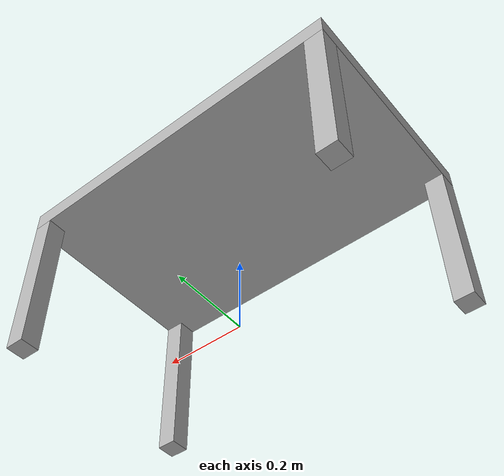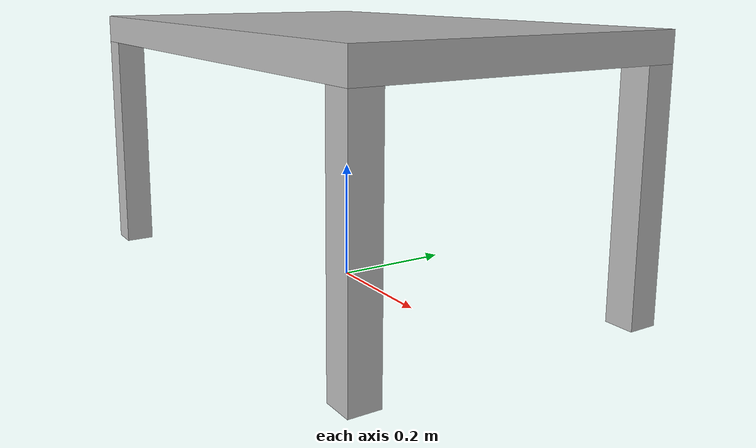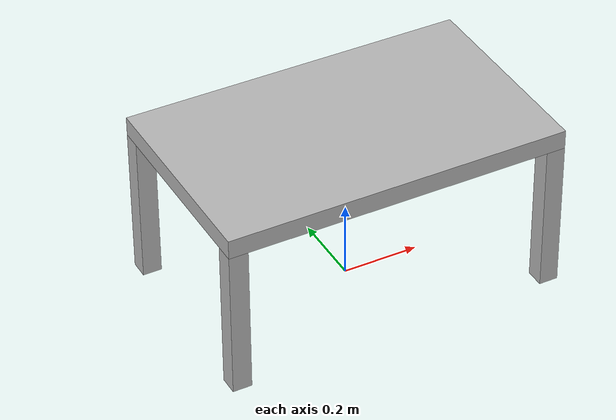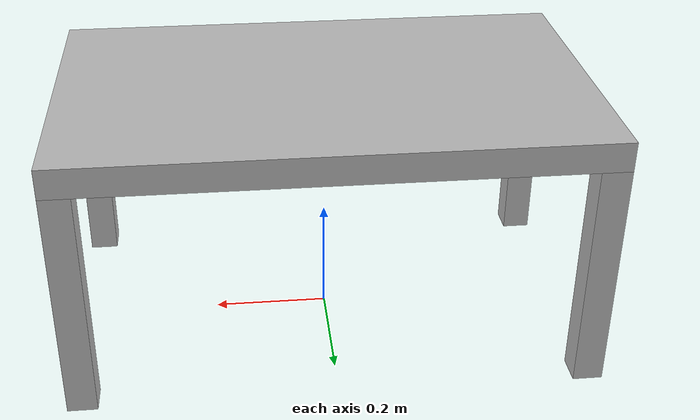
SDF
<?xml version="1.0" ?>
<sdf version="1.6">
  <model name="rpo2023/tv_table">
    <static>true</static>
    <link name="1_link">
      <collision name="1_col">
        <geometry>
          <box>
            <size>0.9 0.55 0.05</size>
          </box>
        </geometry>
      </collision>
      <visual name="1_vis">
        <geometry>
          <box>
            <size>0.9 0.55 0.05</size>
          </box>
        </geometry>
      </visual>
      <pose>0.0 0.0 0.425 0 0 0</pose>
    </link>
    <link name="2_link">
      <collision name="2_col">
        <geometry>
          <box>
            <size>0.05 0.05 0.4</size>
          </box>
        </geometry>
      </collision>
      <visual name="2_vis">
        <geometry>
          <box>
            <size>0.05 0.05 0.4</size>
          </box>
        </geometry>
      </visual>
      <pose>-0.425 -0.25 0.2 0 0 0</pose>
    </link>
    <link name="3_link">
      <collision name="3_col">
        <geometry>
          <box>
            <size>0.05 0.05 0.4</size>
          </box>
        </geometry>
      </collision>
      <visual name="3_vis">
        <geometry>
          <box>
            <size>0.05 0.05 0.4</size>
          </box>
        </geometry>
      </visual>
      <pose>0.425 -0.25 0.2 0 0 0</pose>
    </link>
    <link name="4_link">
      <collision name="4_col">
        <geometry>
          <box>
            <size>0.05 0.05 0.4</size>
          </box>
        </geometry>
      </collision>
      <visual name="4_vis">
        <geometry>
          <box>
            <size>0.05 0.05 0.4</size>
          </box>
        </geometry>
      </visual>
      <pose>-0.425 0.25 0.2 0 0 0</pose>
    </link>
    <link name="5_link">
      <collision name="5_col">
        <geometry>
          <box>
            <size>0.05 0.05 0.4</size>
          </box>
        </geometry>
      </collision>
      <visual name="5_vis">
        <geometry>
          <box>
            <size>0.05 0.05 0.4</size>
          </box>
        </geometry>
      </visual>
      <pose>0.425 0.25 0.2 0 0 0</pose>
    </link>
    <link name="on_top_of">
      <virtual_volume name="on_top_of_vv">
        <geometry>
          <box>
            <size>0.88 0.49 0.25</size>
          </box>
        </geometry>
        <pose>0.0 0.0 0.595 0 0 0</pose>
      </virtual_volume>
    </link>
    <link name="in_front_of">
      <virtual_volume name="in_front_of_vv">
        <geometry>
          <box>
            <size>0.2 0.35 0.01</size>
          </box>
        </geometry>
        <pose>0.95 0.0 0.005 0 0 0</pose>
      </virtual_volume>
    </link>
  </model>
</sdf>
